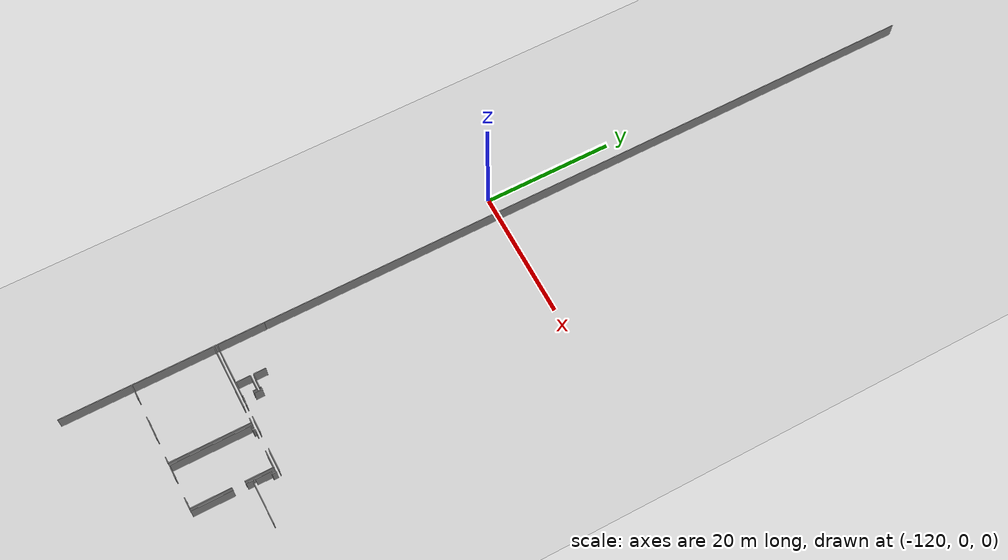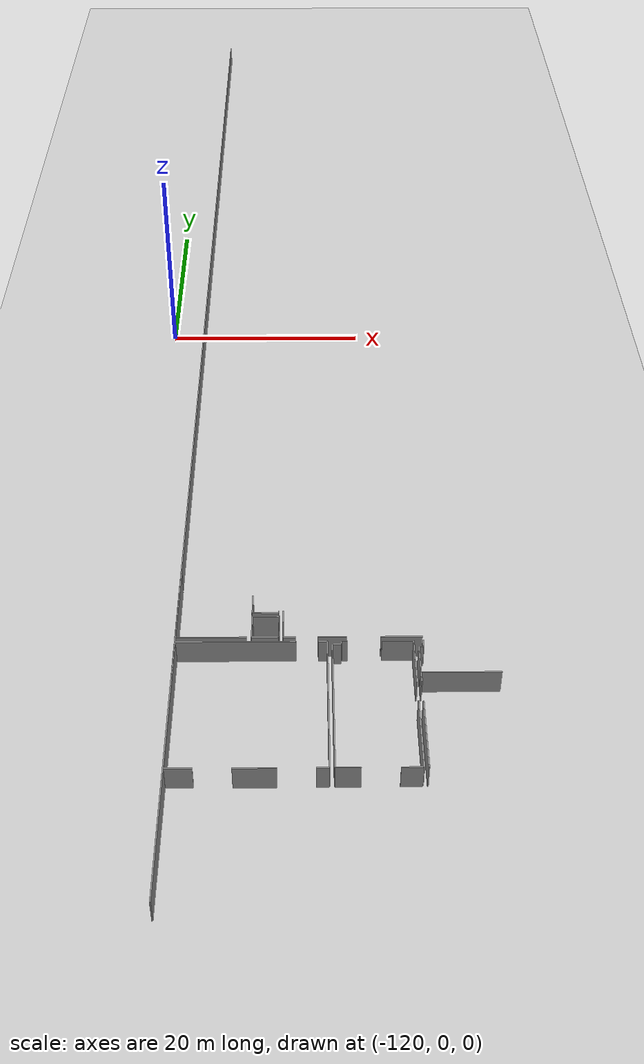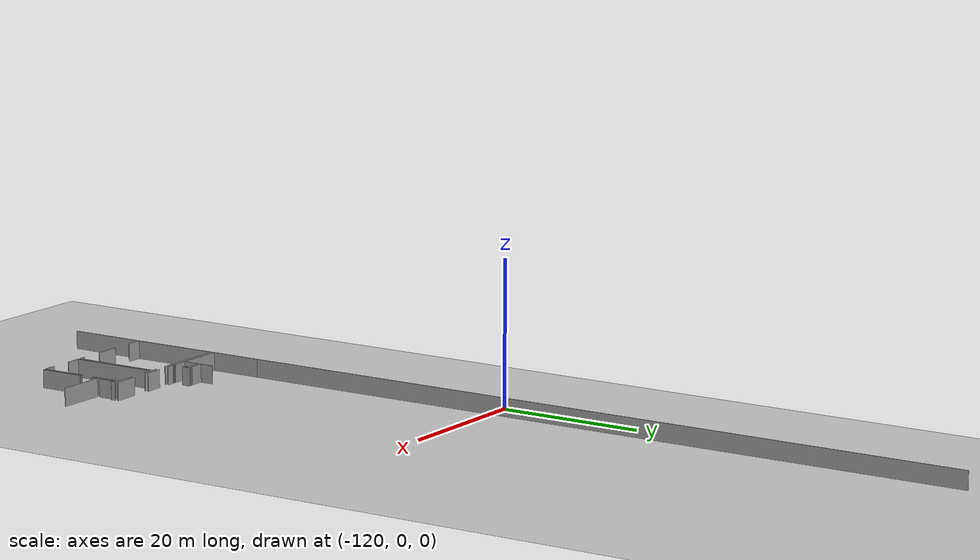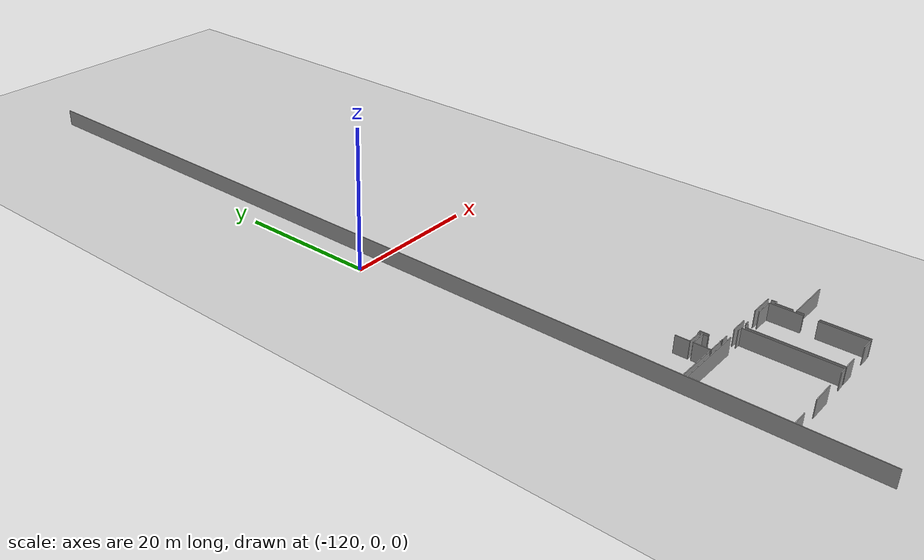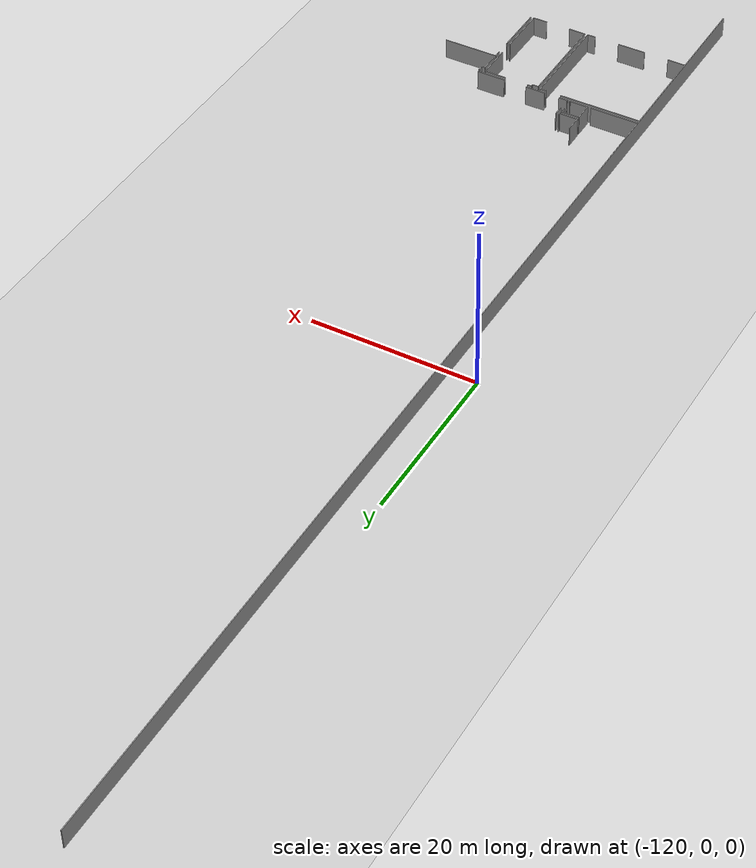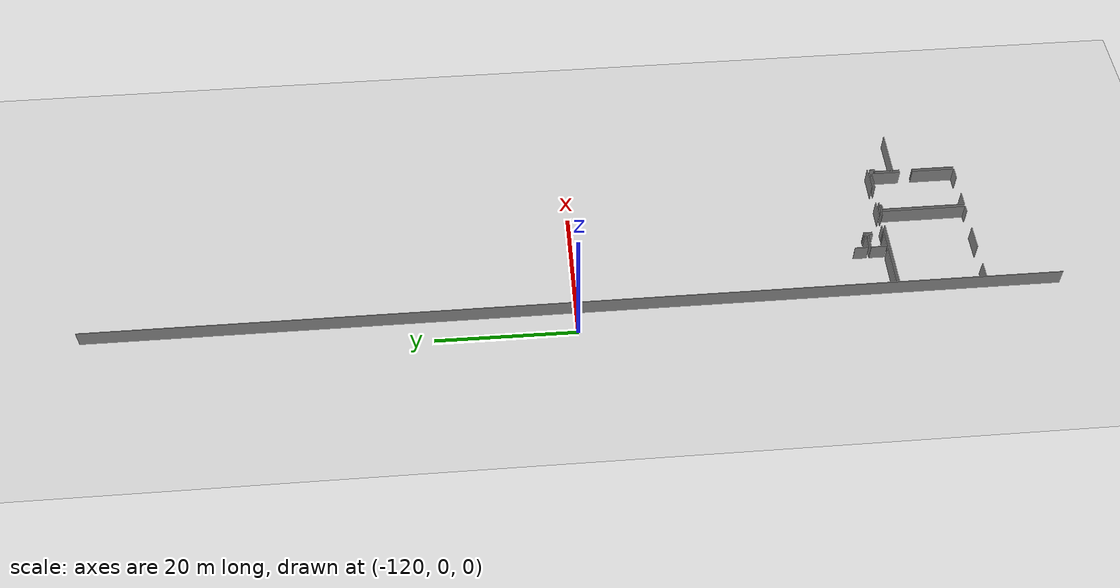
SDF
<sdf version="1.6">
 <world name="default">
  <model name="ground_plane">
   <static>1</static>
   <link name="link">
    <collision name="collision">
     <geometry><plane><normal>0 0 1</normal><size>100 100</size></plane></geometry>
     <surface><friction><ode><mu>100</mu><mu2>50</mu2></ode></friction></surface>
    </collision>
    <visual name="visual">
     <cast_shadows>0</cast_shadows>
     <geometry><plane><normal>0 0 1</normal><size>100 100</size></plane></geometry>
     <material>
      <script><uri>file://media/materials/scripts/gazebo.material</uri><name>Gazebo/Grey</name></script>
     </material>
    </visual>
   </link>
  </model>
  <model name="0510035519_A_40_1_102">
   <static>1</static>
   <link name="Wall_375">
    <collision name="Wall_375_Collision">
     <geometry><box><size>7.2593722201 0.1 2.5</size></box></geometry>
     <pose>3.62968611005 0 1.25 0 0 0</pose>
    </collision>
    <visual name="Wall_375_Visual">
     <pose>3.62968611005 0 1.25 0 0 0</pose>
     <geometry><box><size>7.2593722201 0.1 2.5</size></box></geometry>
     <material>
      <script><uri>file://media/materials/scripts/gazebo.material</uri><name>Gazebo/Grey</name></script>
      <ambient>1 1 1 1</ambient>
     </material>
    </visual>
    <pose>0.0188079806837 -113.580887025 0 0 0 1.57079632679</pose>
   </link>
   <link name="Wall_379">
    <collision name="Wall_379_Collision">
     <geometry><box><size>5.99063051605 0.1 2.5</size></box></geometry>
     <pose>2.99531525803 0 1.25 0 0 0</pose>
    </collision>
    <visual name="Wall_379_Visual">
     <pose>2.99531525803 0 1.25 0 0 0</pose>
     <geometry><box><size>5.99063051605 0.1 2.5</size></box></geometry>
     <material>
      <script><uri>file://media/materials/scripts/gazebo.material</uri><name>Gazebo/Grey</name></script>
      <ambient>1 1 1 1</ambient>
     </material>
    </visual>
    <pose>6.00940399034 -113.601219977 0 0 0 3.13819852152</pose>
   </link>
   <link name="Wall_435">
    <collision name="Wall_435_Collision">
     <geometry><box><size>1.92654721057 0.1 2.5</size></box></geometry>
     <pose>0.963273605287 0 1.25 0 0 0</pose>
    </collision>
    <visual name="Wall_435_Visual">
     <pose>0.963273605287 0 1.25 0 0 0</pose>
     <geometry><box><size>1.92654721057 0.1 2.5</size></box></geometry>
     <material>
      <script><uri>file://media/materials/scripts/gazebo.material</uri><name>Gazebo/Grey</name></script>
      <ambient>1 1 1 1</ambient>
     </material>
    </visual>
    <pose>6.43029609861 -110.922861863 0 0 0 1.57079632679</pose>
   </link>
   <link name="Wall_438">
    <collision name="Wall_438_Collision">
     <geometry><box><size>0.218579234973 0.1 2.5</size></box></geometry>
     <pose>0.109289617486 0 1.25 0 0 0</pose>
    </collision>
    <visual name="Wall_438_Visual">
     <pose>0.109289617486 0 1.25 0 0 0</pose>
     <geometry><box><size>0.218579234973 0.1 2.5</size></box></geometry>
     <material>
      <script><uri>file://media/materials/scripts/gazebo.material</uri><name>Gazebo/Grey</name></script>
      <ambient>1 1 1 1</ambient>
     </material>
    </visual>
    <pose>8.6971660948 -110.730715466 0 0 0 -1.57079632679</pose>
   </link>
   <link name="Wall_439">
    <collision name="Wall_439_Collision">
     <geometry><box><size>2.267024101 0.1 2.5</size></box></geometry>
     <pose>1.1335120505 0 1.25 0 0 0</pose>
    </collision>
    <visual name="Wall_439_Visual">
     <pose>1.1335120505 0 1.25 0 0 0</pose>
     <geometry><box><size>2.267024101 0.1 2.5</size></box></geometry>
     <material>
      <script><uri>file://media/materials/scripts/gazebo.material</uri><name>Gazebo/Grey</name></script>
      <ambient>1 1 1 1</ambient>
     </material>
    </visual>
    <pose>8.6971660948 -110.949294701 0 0 0 3.12993268197</pose>
   </link>
   <link name="Wall_440">
    <collision name="Wall_440_Collision">
     <geometry><box><size>2.246791206 0.1 2.5</size></box></geometry>
     <pose>1.123395603 0 1.25 0 0 0</pose>
    </collision>
    <visual name="Wall_440_Visual">
     <pose>1.123395603 0 1.25 0 0 0</pose>
     <geometry><box><size>2.246791206 0.1 2.5</size></box></geometry>
     <material>
      <script><uri>file://media/materials/scripts/gazebo.material</uri><name>Gazebo/Grey</name></script>
      <ambient>1 1 1 1</ambient>
     </material>
    </visual>
    <pose>6.43741263185 -113.595882577 0 0 0 1.57079632679</pose>
   </link>
   <link name="Wall_441">
    <collision name="Wall_441_Collision">
     <geometry><box><size>2.2686491295 0.1 2.5</size></box></geometry>
     <pose>1.13432456475 0 1.25 0 0 0</pose>
    </collision>
    <visual name="Wall_441_Visual">
     <pose>1.13432456475 0 1.25 0 0 0</pose>
     <geometry><box><size>2.2686491295 0.1 2.5</size></box></geometry>
     <material>
      <script><uri>file://media/materials/scripts/gazebo.material</uri><name>Gazebo/Grey</name></script>
      <ambient>1 1 1 1</ambient>
     </material>
    </visual>
    <pose>6.43741263185 -111.349091371 0 0 0 0.0</pose>
   </link>
   <link name="Wall_442">
    <collision name="Wall_442_Collision">
     <geometry><box><size>0.657516838226 0.1 2.5</size></box></geometry>
     <pose>0.328758419113 0 1.25 0 0 0</pose>
    </collision>
    <visual name="Wall_442_Visual">
     <pose>0.328758419113 0 1.25 0 0 0</pose>
     <geometry><box><size>0.657516838226 0.1 2.5</size></box></geometry>
     <material>
      <script><uri>file://media/materials/scripts/gazebo.material</uri><name>Gazebo/Grey</name></script>
      <ambient>1 1 1 1</ambient>
     </material>
    </visual>
    <pose>8.70606176134 -111.349091371 0 0 0 -1.57079632679</pose>
   </link>
   <link name="Wall_443">
    <collision name="Wall_443_Collision">
     <geometry><box><size>0.10115643665 0.1 2.5</size></box></geometry>
     <pose>0.0505782183251 0 1.25 0 0 0</pose>
    </collision>
    <visual name="Wall_443_Visual">
     <pose>0.0505782183251 0 1.25 0 0 0</pose>
     <geometry><box><size>0.10115643665 0.1 2.5</size></box></geometry>
     <material>
      <script><uri>file://media/materials/scripts/gazebo.material</uri><name>Gazebo/Grey</name></script>
      <ambient>1 1 1 1</ambient>
     </material>
    </visual>
    <pose>8.70606176134 -113.509213369 0 0 0 -1.57079632679</pose>
   </link>
   <link name="Wall_444">
    <collision name="Wall_444_Collision">
     <geometry><box><size>2.26869538558 0.1 2.5</size></box></geometry>
     <pose>1.13434769279 0 1.25 0 0 0</pose>
    </collision>
    <visual name="Wall_444_Visual">
     <pose>1.13434769279 0 1.25 0 0 0</pose>
     <geometry><box><size>2.26869538558 0.1 2.5</size></box></geometry>
     <material>
      <script><uri>file://media/materials/scripts/gazebo.material</uri><name>Gazebo/Grey</name></script>
      <ambient>1 1 1 1</ambient>
     </material>
    </visual>
    <pose>8.70606176134 -113.610369806 0 0 0 3.13520690127</pose>
   </link>
   <link name="Wall_445">
    <collision name="Wall_445_Collision">
     <geometry><box><size>12.3832761469 0.1 2.5</size></box></geometry>
     <pose>6.19163807345 0 1.25 0 0 0</pose>
    </collision>
    <visual name="Wall_445_Visual">
     <pose>6.19163807345 0 1.25 0 0 0</pose>
     <geometry><box><size>12.3832761469 0.1 2.5</size></box></geometry>
     <material>
      <script><uri>file://media/materials/scripts/gazebo.material</uri><name>Gazebo/Grey</name></script>
      <ambient>1 1 1 1</ambient>
     </material>
    </visual>
    <pose>0.0218579234973 -126.456220613 0 0 0 1.57079632679</pose>
   </link>
   <link name="Wall_446">
    <collision name="Wall_446_Collision">
     <geometry><box><size>10.1692718262 0.1 2.5</size></box></geometry>
     <pose>5.08463591308 0 1.25 0 0 0</pose>
    </collision>
    <visual name="Wall_446_Visual">
     <pose>5.08463591308 0 1.25 0 0 0</pose>
     <geometry><box><size>10.1692718262 0.1 2.5</size></box></geometry>
     <material>
      <script><uri>file://media/materials/scripts/gazebo.material</uri><name>Gazebo/Grey</name></script>
      <ambient>1 1 1 1</ambient>
     </material>
    </visual>
    <pose>0.0218579234973 -114.072944466 0 0 0 0.0</pose>
   </link>
   <link name="Wall_447">
    <collision name="Wall_447_Collision">
     <geometry><box><size>0.772652179438 0.1 2.5</size></box></geometry>
     <pose>0.386326089719 0 1.25 0 0 0</pose>
    </collision>
    <visual name="Wall_447_Visual">
     <pose>0.386326089719 0 1.25 0 0 0</pose>
     <geometry><box><size>0.772652179438 0.1 2.5</size></box></geometry>
     <material>
      <script><uri>file://media/materials/scripts/gazebo.material</uri><name>Gazebo/Grey</name></script>
      <ambient>1 1 1 1</ambient>
     </material>
    </visual>
    <pose>12.0584572373 -114.072944466 0 0 0 0.0</pose>
   </link>
   <link name="Wall_448">
    <collision name="Wall_448_Collision">
     <geometry><box><size>12.3949675944 0.1 2.5</size></box></geometry>
     <pose>6.19748379718 0 1.25 0 0 0</pose>
    </collision>
    <visual name="Wall_448_Visual">
     <pose>6.19748379718 0 1.25 0 0 0</pose>
     <geometry><box><size>12.3949675944 0.1 2.5</size></box></geometry>
     <material>
      <script><uri>file://media/materials/scripts/gazebo.material</uri><name>Gazebo/Grey</name></script>
      <ambient>1 1 1 1</ambient>
     </material>
    </visual>
    <pose>12.8311094167 -114.072944466 0 0 0 -1.57079632679</pose>
   </link>
   <link name="Wall_449">
    <collision name="Wall_449_Collision">
     <geometry><box><size>1.01766425213 0.1 2.5</size></box></geometry>
     <pose>0.508832126064 0 1.25 0 0 0</pose>
    </collision>
    <visual name="Wall_449_Visual">
     <pose>0.508832126064 0 1.25 0 0 0</pose>
     <geometry><box><size>1.01766425213 0.1 2.5</size></box></geometry>
     <material>
      <script><uri>file://media/materials/scripts/gazebo.material</uri><name>Gazebo/Grey</name></script>
      <ambient>1 1 1 1</ambient>
     </material>
    </visual>
    <pose>12.8311094167 -126.46791206 0 0 0 3.14159265359</pose>
   </link>
   <link name="Wall_450">
    <collision name="Wall_450_Collision">
     <geometry><box><size>3.47134324565 0.1 2.5</size></box></geometry>
     <pose>1.73567162282 0 1.25 0 0 0</pose>
    </collision>
    <visual name="Wall_450_Visual">
     <pose>1.73567162282 0 1.25 0 0 0</pose>
     <geometry><box><size>3.47134324565 0.1 2.5</size></box></geometry>
     <material>
      <script><uri>file://media/materials/scripts/gazebo.material</uri><name>Gazebo/Grey</name></script>
      <ambient>1 1 1 1</ambient>
     </material>
    </visual>
    <pose>8.76629813191 -126.46791206 0 0 0 3.14159265359</pose>
   </link>
   <link name="Wall_451">
    <collision name="Wall_451_Collision">
     <geometry><box><size>2.24224677256 0.1 2.5</size></box></geometry>
     <pose>1.12112338628 0 1.25 0 0 0</pose>
    </collision>
    <visual name="Wall_451_Visual">
     <pose>1.12112338628 0 1.25 0 0 0</pose>
     <geometry><box><size>2.24224677256 0.1 2.5</size></box></geometry>
     <material>
      <script><uri>file://media/materials/scripts/gazebo.material</uri><name>Gazebo/Grey</name></script>
      <ambient>1 1 1 1</ambient>
     </material>
    </visual>
    <pose>2.26407421528 -126.46791206 0 0 0 3.13637846371</pose>
   </link>
   <link name="Wall_452">
    <collision name="Wall_452_Collision">
     <geometry><box><size>12.053882323 0.1 2.5</size></box></geometry>
     <pose>6.02694116152 0 1.25 0 0 0</pose>
    </collision>
    <visual name="Wall_452_Visual">
     <pose>6.02694116152 0 1.25 0 0 0</pose>
     <geometry><box><size>12.053882323 0.1 2.5</size></box></geometry>
     <material>
      <script><uri>file://media/materials/scripts/gazebo.material</uri><name>Gazebo/Grey</name></script>
      <ambient>1 1 1 1</ambient>
     </material>
    </visual>
    <pose>13.239039268 -126.437412632 0 0 0 1.57079632679</pose>
   </link>
   <link name="Wall_453">
    <collision name="Wall_453_Collision">
     <geometry><box><size>0.74825263693 0.1 2.5</size></box></geometry>
     <pose>0.374126318465 0 1.25 0 0 0</pose>
    </collision>
    <visual name="Wall_453_Visual">
     <pose>0.374126318465 0 1.25 0 0 0</pose>
     <geometry><box><size>0.74825263693 0.1 2.5</size></box></geometry>
     <material>
      <script><uri>file://media/materials/scripts/gazebo.material</uri><name>Gazebo/Grey</name></script>
      <ambient>1 1 1 1</ambient>
     </material>
    </visual>
    <pose>13.239039268 -114.383530309 0 0 0 0.0</pose>
   </link>
   <link name="Wall_454">
    <collision name="Wall_454_Collision">
     <geometry><box><size>0.310585843182 0.1 2.5</size></box></geometry>
     <pose>0.155292921591 0 1.25 0 0 0</pose>
    </collision>
    <visual name="Wall_454_Visual">
     <pose>0.155292921591 0 1.25 0 0 0</pose>
     <geometry><box><size>0.310585843182 0.1 2.5</size></box></geometry>
     <material>
      <script><uri>file://media/materials/scripts/gazebo.material</uri><name>Gazebo/Grey</name></script>
      <ambient>1 1 1 1</ambient>
     </material>
    </visual>
    <pose>13.9872919049 -114.383530309 0 0 0 1.57079632679</pose>
   </link>
   <link name="Wall_455">
    <collision name="Wall_455_Collision">
     <geometry><box><size>0.53475663998 0.1 2.5</size></box></geometry>
     <pose>0.26737831999 0 1.25 0 0 0</pose>
    </collision>
    <visual name="Wall_455_Visual">
     <pose>0.26737831999 0 1.25 0 0 0</pose>
     <geometry><box><size>0.53475663998 0.1 2.5</size></box></geometry>
     <material>
      <script><uri>file://media/materials/scripts/gazebo.material</uri><name>Gazebo/Grey</name></script>
      <ambient>1 1 1 1</ambient>
     </material>
    </visual>
    <pose>13.9872919049 -114.072944466 0 0 0 0.0</pose>
   </link>
   <link name="Wall_456">
    <collision name="Wall_456_Collision">
     <geometry><box><size>2.67530817131 0.1 2.5</size></box></geometry>
     <pose>1.33765408565 0 1.25 0 0 0</pose>
    </collision>
    <visual name="Wall_456_Visual">
     <pose>1.33765408565 0 1.25 0 0 0</pose>
     <geometry><box><size>2.67530817131 0.1 2.5</size></box></geometry>
     <material>
      <script><uri>file://media/materials/scripts/gazebo.material</uri><name>Gazebo/Grey</name></script>
      <ambient>1 1 1 1</ambient>
     </material>
    </visual>
    <pose>17.4146651417 -114.072944466 0 0 0 0.0</pose>
   </link>
   <link name="Wall_457">
    <collision name="Wall_457_Collision">
     <geometry><box><size>4.30016520524 0.1 2.5</size></box></geometry>
     <pose>2.15008260262 0 1.25 0 0 0</pose>
    </collision>
    <visual name="Wall_457_Visual">
     <pose>2.15008260262 0 1.25 0 0 0</pose>
     <geometry><box><size>4.30016520524 0.1 2.5</size></box></geometry>
     <material>
      <script><uri>file://media/materials/scripts/gazebo.material</uri><name>Gazebo/Grey</name></script>
      <ambient>1 1 1 1</ambient>
     </material>
    </visual>
    <pose>20.089973313 -114.072944466 0 0 0 -1.57079632679</pose>
   </link>
   <link name="Wall_458">
    <collision name="Wall_458_Collision">
     <geometry><box><size>6.22772906341 0.1 2.5</size></box></geometry>
     <pose>3.11386453171 0 1.25 0 0 0</pose>
    </collision>
    <visual name="Wall_458_Visual">
     <pose>3.11386453171 0 1.25 0 0 0</pose>
     <geometry><box><size>6.22772906341 0.1 2.5</size></box></geometry>
     <material>
      <script><uri>file://media/materials/scripts/gazebo.material</uri><name>Gazebo/Grey</name></script>
      <ambient>1 1 1 1</ambient>
     </material>
    </visual>
    <pose>20.089973313 -120.231033168 0 0 0 -1.57079632679</pose>
   </link>
   <link name="Wall_459">
    <collision name="Wall_459_Collision">
     <geometry><box><size>1.76566272716 0.1 2.5</size></box></geometry>
     <pose>0.882831363579 0 1.25 0 0 0</pose>
    </collision>
    <visual name="Wall_459_Visual">
     <pose>0.882831363579 0 1.25 0 0 0</pose>
     <geometry><box><size>1.76566272716 0.1 2.5</size></box></geometry>
     <material>
      <script><uri>file://media/materials/scripts/gazebo.material</uri><name>Gazebo/Grey</name></script>
      <ambient>1 1 1 1</ambient>
     </material>
    </visual>
    <pose>20.089973313 -126.458762232 0 0 0 3.14159265359</pose>
   </link>
   <link name="Wall_460">
    <collision name="Wall_460_Collision">
     <geometry><box><size>2.03137410834 0.1 2.5</size></box></geometry>
     <pose>1.01568705417 0 1.25 0 0 0</pose>
    </collision>
    <visual name="Wall_460_Visual">
     <pose>1.01568705417 0 1.25 0 0 0</pose>
     <geometry><box><size>2.03137410834 0.1 2.5</size></box></geometry>
     <material>
      <script><uri>file://media/materials/scripts/gazebo.material</uri><name>Gazebo/Grey</name></script>
      <ambient>1 1 1 1</ambient>
     </material>
    </visual>
    <pose>15.2703011819 -126.458762232 0 0 0 3.13108253009</pose>
   </link>
   <link name="Wall_461">
    <collision name="Wall_461_Collision">
     <geometry><box><size>2.29660693862 0.1 2.5</size></box></geometry>
     <pose>1.14830346931 0 1.25 0 0 0</pose>
    </collision>
    <visual name="Wall_461_Visual">
     <pose>1.14830346931 0 1.25 0 0 0</pose>
     <geometry><box><size>2.29660693862 0.1 2.5</size></box></geometry>
     <material>
      <script><uri>file://media/materials/scripts/gazebo.material</uri><name>Gazebo/Grey</name></script>
      <ambient>1 1 1 1</ambient>
     </material>
    </visual>
    <pose>20.4923116025 -116.969119329 0 0 0 1.57079632679</pose>
   </link>
   <link name="Wall_462">
    <collision name="Wall_462_Collision">
     <geometry><box><size>0.387596899225 0.1 2.5</size></box></geometry>
     <pose>0.193798449612 0 1.25 0 0 0</pose>
    </collision>
    <visual name="Wall_462_Visual">
     <pose>0.193798449612 0 1.25 0 0 0</pose>
     <geometry><box><size>0.387596899225 0.1 2.5</size></box></geometry>
     <material>
      <script><uri>file://media/materials/scripts/gazebo.material</uri><name>Gazebo/Grey</name></script>
      <ambient>1 1 1 1</ambient>
     </material>
    </visual>
    <pose>20.4923116025 -114.67251239 0 0 0 0.0</pose>
   </link>
   <link name="Wall_463">
    <collision name="Wall_463_Collision">
     <geometry><box><size>0.67200406659 0.1 2.5</size></box></geometry>
     <pose>0.336002033295 0 1.25 0 0 0</pose>
    </collision>
    <visual name="Wall_463_Visual">
     <pose>0.336002033295 0 1.25 0 0 0</pose>
     <geometry><box><size>0.67200406659 0.1 2.5</size></box></geometry>
     <material>
      <script><uri>file://media/materials/scripts/gazebo.material</uri><name>Gazebo/Grey</name></script>
      <ambient>1 1 1 1</ambient>
     </material>
    </visual>
    <pose>20.8799085017 -114.67251239 0 0 0 1.57079632679</pose>
   </link>
   <link name="Wall_508">
    <collision name="Wall_508_Collision">
     <geometry><box><size>3.5051467785 0.1 2.5</size></box></geometry>
     <pose>1.75257338925 0 1.25 0 0 0</pose>
    </collision>
    <visual name="Wall_508_Visual">
     <pose>1.75257338925 0 1.25 0 0 0</pose>
     <geometry><box><size>3.5051467785 0.1 2.5</size></box></geometry>
     <material>
      <script><uri>file://media/materials/scripts/gazebo.material</uri><name>Gazebo/Grey</name></script>
      <ambient>1 1 1 1</ambient>
     </material>
    </visual>
    <pose>20.8438175118 -113.605286568 0 0 0 3.14159265359</pose>
   </link>
   <link name="Wall_509">
    <collision name="Wall_509_Collision">
     <geometry><box><size>2.46943703139 0.1 2.5</size></box></geometry>
     <pose>1.23471851569 0 1.25 0 0 0</pose>
    </collision>
    <visual name="Wall_509_Visual">
     <pose>1.23471851569 0 1.25 0 0 0</pose>
     <geometry><box><size>2.46943703139 0.1 2.5</size></box></geometry>
     <material>
      <script><uri>file://media/materials/scripts/gazebo.material</uri><name>Gazebo/Grey</name></script>
      <ambient>1 1 1 1</ambient>
     </material>
    </visual>
    <pose>14.4897699835 -113.605286568 0 0 0 3.14159265359</pose>
   </link>
   <link name="Wall_510">
    <collision name="Wall_510_Collision">
     <geometry><box><size>1.08018807981 0.1 2.5</size></box></geometry>
     <pose>0.540094039903 0 1.25 0 0 0</pose>
    </collision>
    <visual name="Wall_510_Visual">
     <pose>0.540094039903 0 1.25 0 0 0</pose>
     <geometry><box><size>1.08018807981 0.1 2.5</size></box></geometry>
     <material>
      <script><uri>file://media/materials/scripts/gazebo.material</uri><name>Gazebo/Grey</name></script>
      <ambient>1 1 1 1</ambient>
     </material>
    </visual>
    <pose>10.1662218833 -113.605286568 0 0 0 3.14159265359</pose>
   </link>
   <link name="Wall_511">
    <collision name="Wall_511_Collision">
     <geometry><box><size>0.101410598551 0.1 2.5</size></box></geometry>
     <pose>0.0507052992756 0 1.25 0 0 0</pose>
    </collision>
    <visual name="Wall_511_Visual">
     <pose>0.0507052992756 0 1.25 0 0 0</pose>
     <geometry><box><size>0.101410598551 0.1 2.5</size></box></geometry>
     <material>
      <script><uri>file://media/materials/scripts/gazebo.material</uri><name>Gazebo/Grey</name></script>
      <ambient>1 1 1 1</ambient>
     </material>
    </visual>
    <pose>9.08603380353 -113.605286568 0 0 0 1.57079632679</pose>
   </link>
   <link name="Wall_512">
    <collision name="Wall_512_Collision">
     <geometry><box><size>1.24259753463 0.1 2.5</size></box></geometry>
     <pose>0.621298767315 0 1.25 0 0 0</pose>
    </collision>
    <visual name="Wall_512_Visual">
     <pose>0.621298767315 0 1.25 0 0 0</pose>
     <geometry><box><size>1.24259753463 0.1 2.5</size></box></geometry>
     <material>
      <script><uri>file://media/materials/scripts/gazebo.material</uri><name>Gazebo/Grey</name></script>
      <ambient>1 1 1 1</ambient>
     </material>
    </visual>
    <pose>9.08603380353 -111.963146524 0 0 0 1.57079632679</pose>
   </link>
   <link name="Wall_514">
    <collision name="Wall_514_Collision">
     <geometry><box><size>6.23814970136 0.1 2.5</size></box></geometry>
     <pose>3.11907485068 0 1.25 0 0 0</pose>
    </collision>
    <visual name="Wall_514_Visual">
     <pose>3.11907485068 0 1.25 0 0 0</pose>
     <geometry><box><size>6.23814970136 0.1 2.5</size></box></geometry>
     <material>
      <script><uri>file://media/materials/scripts/gazebo.material</uri><name>Gazebo/Grey</name></script>
      <ambient>1 1 1 1</ambient>
     </material>
    </visual>
    <pose>20.4826534502 -126.470707841 0 0 0 1.57079632679</pose>
   </link>
   <link name="Wall_515">
    <collision name="Wall_515_Collision">
     <geometry><box><size>0.954886262549 0.1 2.5</size></box></geometry>
     <pose>0.477443131275 0 1.25 0 0 0</pose>
    </collision>
    <visual name="Wall_515_Visual">
     <pose>0.477443131275 0 1.25 0 0 0</pose>
     <geometry><box><size>0.954886262549 0.1 2.5</size></box></geometry>
     <material>
      <script><uri>file://media/materials/scripts/gazebo.material</uri><name>Gazebo/Grey</name></script>
      <ambient>1 1 1 1</ambient>
     </material>
    </visual>
    <pose>20.4826534502 -118.31948151 0 0 0 1.57079632679</pose>
   </link>
   <link name="Wall_516">
    <collision name="Wall_516_Collision">
     <geometry><box><size>6.6745456856 0.1 2.5</size></box></geometry>
     <pose>3.3372728428 0 1.25 0 0 0</pose>
    </collision>
    <visual name="Wall_516_Visual">
     <pose>3.3372728428 0 1.25 0 0 0</pose>
     <geometry><box><size>6.6745456856 0.1 2.5</size></box></geometry>
     <material>
      <script><uri>file://media/materials/scripts/gazebo.material</uri><name>Gazebo/Grey</name></script>
      <ambient>1 1 1 1</ambient>
     </material>
    </visual>
    <pose>20.4826534502 -117.364595247 0 0 0 0.0</pose>
   </link>
   <link name="Wall_1199">
    <collision name="Wall_1199_Collision">
     <geometry><box><size>137.421527513 0.1 2.5</size></box></geometry>
     <pose>68.7107637565 0 1.25 0 0 0</pose>
    </collision>
    <visual name="Wall_1199_Visual">
     <pose>68.7107637565 0 1.25 0 0 0</pose>
     <geometry><box><size>137.421527513 0.1 2.5</size></box></geometry>
     <material>
      <script><uri>file://media/materials/scripts/gazebo.material</uri><name>Gazebo/Grey</name></script>
      <ambient>1 1 1 1</ambient>
     </material>
    </visual>
    <pose>0.0 -137.421527513 0 0 0 1.57079632679</pose>
   </link>
   <pose>-116.6 68.721527513 0 0 0 0</pose>
  </model>
 </world>
</sdf>
